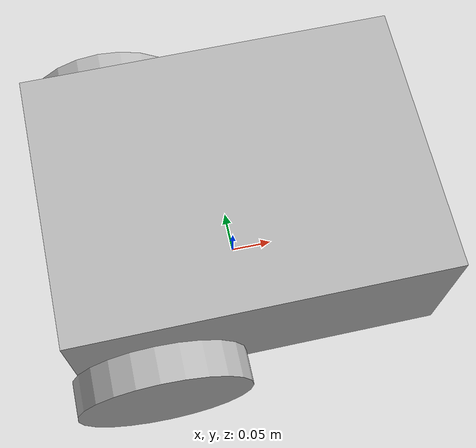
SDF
<sdf version='1.7'>
  <model name='mobile_bot'>
    <link name='base_footprint'>
      <inertial>
        <pose>0.004487 0 0.147179 0 -0 0</pose>
        <mass>15.6</mass>
        <inertia>
          <ixx>0.265823</ixx>
          <ixy>0</ixy>
          <ixz>0.00610256</ixz>
          <iyy>0.354933</iyy>
          <iyz>0</iyz>
          <izz>0.170998</izz>
        </inertia>
      </inertial>
      <collision name='base_footprint_fixed_joint_lump__base_link_collision'>
        <pose>0 0 0.15 0 -0 0</pose>
        <geometry>
          <box>
            <size>0.42 0.31 0.18</size>
          </box>
        </geometry>
      </collision>
      <collision name='base_footprint_fixed_joint_lump__front_caster_collision_1'>
        <pose>0.14 0 0.06 0 -0 0</pose>
        <geometry>
          <sphere>
            <radius>0.06</radius>
          </sphere>
        </geometry>
      </collision>
      <collision name='base_footprint_fixed_joint_lump__imu_link_collision_2'>
        <pose>0 0 0.16 0 -0 0</pose>
        <geometry>
          <box>
            <size>0.1 0.1 0.1</size>
          </box>
        </geometry>
        <surface>
          <contact>
            <ode/>
          </contact>
          <friction>
            <ode/>
          </friction>
        </surface>
      </collision>
      <visual name='base_footprint_fixed_joint_lump__base_link_visual'>
        <pose>0 0 0.15 0 -0 0</pose>
        <geometry>
          <box>
            <size>0.42 0.31 0.18</size>
          </box>
        </geometry>
      </visual>
      <visual name='base_footprint_fixed_joint_lump__front_caster_visual_1'>
        <pose>0.14 0 0.06 0 -0 0</pose>
        <geometry>
          <sphere>
            <radius>0.06</radius>
          </sphere>
        </geometry>
      </visual>
      <visual name='base_footprint_fixed_joint_lump__imu_link_visual_2'>
        <pose>0 0 0.16 0 -0 0</pose>
        <geometry>
          <box>
            <size>0.1 0.1 0.1</size>
          </box>
        </geometry>
      </visual>
      <sensor name='imu_sensor' type='imu'>
        <plugin name='imu_plugin' filename='libgazebo_ros_imu_sensor.so'>
          <ros>
            <namespace>/demo</namespace>
            <remapping>~/out:=imu</remapping>
          </ros>
          <initial_orientation_as_reference>0</initial_orientation_as_reference>
        </plugin>
        <always_on>1</always_on>
        <update_rate>100</update_rate>
        <visualize>1</visualize>
        <imu>
          <angular_velocity>
            <x>
              <noise type='gaussian'>
                <mean>0</mean>
                <stddev>0.0002</stddev>
                <bias_mean>7.5e-06</bias_mean>
                <bias_stddev>8e-07</bias_stddev>
              </noise>
            </x>
            <y>
              <noise type='gaussian'>
                <mean>0</mean>
                <stddev>0.0002</stddev>
                <bias_mean>7.5e-06</bias_mean>
                <bias_stddev>8e-07</bias_stddev>
              </noise>
            </y>
            <z>
              <noise type='gaussian'>
                <mean>0</mean>
                <stddev>0.0002</stddev>
                <bias_mean>7.5e-06</bias_mean>
                <bias_stddev>8e-07</bias_stddev>
              </noise>
            </z>
          </angular_velocity>
          <linear_acceleration>
            <x>
              <noise type='gaussian'>
                <mean>0</mean>
                <stddev>0.017</stddev>
                <bias_mean>0.1</bias_mean>
                <bias_stddev>0.001</bias_stddev>
              </noise>
            </x>
            <y>
              <noise type='gaussian'>
                <mean>0</mean>
                <stddev>0.017</stddev>
                <bias_mean>0.1</bias_mean>
                <bias_stddev>0.001</bias_stddev>
              </noise>
            </y>
            <z>
              <noise type='gaussian'>
                <mean>0</mean>
                <stddev>0.017</stddev>
                <bias_mean>0.1</bias_mean>
                <bias_stddev>0.001</bias_stddev>
              </noise>
            </z>
          </linear_acceleration>
        </imu>
        <pose>0 0 0.16 0 -0 0</pose>
      </sensor>
    </link>
    <joint name='drivewhl_l_joint' type='revolute'>
      <pose relative_to='base_footprint'>-0.12 0.18 0.1 1.5708 -0 0</pose>
      <parent>base_footprint</parent>
      <child>drivewhl_l_link</child>
      <axis>
        <xyz>0 1 0</xyz>
        <limit>
          <lower>-1e+16</lower>
          <upper>1e+16</upper>
        </limit>
        <dynamics>
          <spring_reference>0</spring_reference>
          <spring_stiffness>0</spring_stiffness>
        </dynamics>
      </axis>
    </joint>
    <link name='drivewhl_l_link'>
      <pose relative_to='drivewhl_l_joint'>0 0 0 0 -0 0</pose>
      <inertial>
        <pose>0 0 0 0 -0 0</pose>
        <mass>0.5</mass>
        <inertia>
          <ixx>0.00131667</ixx>
          <ixy>0</ixy>
          <ixz>0</ixz>
          <iyy>0.00131667</iyy>
          <iyz>0</iyz>
          <izz>0.0025</izz>
        </inertia>
      </inertial>
      <collision name='drivewhl_l_link_collision'>
        <pose>0 0 0 0 -0 0</pose>
        <geometry>
          <cylinder>
            <length>0.04</length>
            <radius>0.1</radius>
          </cylinder>
        </geometry>
      </collision>
      <visual name='drivewhl_l_link_visual'>
        <pose>0 0 0 0 -0 0</pose>
        <geometry>
          <cylinder>
            <length>0.04</length>
            <radius>0.1</radius>
          </cylinder>
        </geometry>
      </visual>
    </link>
    <joint name='drivewhl_r_joint' type='revolute'>
      <pose relative_to='base_footprint'>-0.12 -0.18 0.1 1.5708 -0 0</pose>
      <parent>base_footprint</parent>
      <child>drivewhl_r_link</child>
      <axis>
        <xyz>0 1 0</xyz>
        <limit>
          <lower>-1e+16</lower>
          <upper>1e+16</upper>
        </limit>
        <dynamics>
          <spring_reference>0</spring_reference>
          <spring_stiffness>0</spring_stiffness>
        </dynamics>
      </axis>
    </joint>
    <link name='drivewhl_r_link'>
      <pose relative_to='drivewhl_r_joint'>0 0 0 0 -0 0</pose>
      <inertial>
        <pose>0 0 0 0 -0 0</pose>
        <mass>0.5</mass>
        <inertia>
          <ixx>0.00131667</ixx>
          <ixy>0</ixy>
          <ixz>0</ixz>
          <iyy>0.00131667</iyy>
          <iyz>0</iyz>
          <izz>0.0025</izz>
        </inertia>
      </inertial>
      <collision name='drivewhl_r_link_collision'>
        <pose>0 0 0 0 -0 0</pose>
        <geometry>
          <cylinder>
            <length>0.04</length>
            <radius>0.1</radius>
          </cylinder>
        </geometry>
      </collision>
      <visual name='drivewhl_r_link_visual'>
        <pose>0 0 0 0 -0 0</pose>
        <geometry>
          <cylinder>
            <length>0.04</length>
            <radius>0.1</radius>
          </cylinder>
        </geometry>
      </visual>
    </link>
    <static>0</static>
    <plugin name='diff_drive' filename='libgazebo_ros_diff_drive.so'>
      <ros>
        <namespace>/demo</namespace>
      </ros>
      <left_joint>drivewhl_l_joint</left_joint>
      <right_joint>drivewhl_r_joint</right_joint>
      <wheel_separation>0.4</wheel_separation>
      <wheel_diameter>0.2</wheel_diameter>
      <max_wheel_torque>20</max_wheel_torque>
      <max_wheel_acceleration>1.0</max_wheel_acceleration>
      <command_topic>cmd_vel</command_topic>
      <publish_odom>1</publish_odom>
      <publish_odom_tf>0</publish_odom_tf>
      <publish_wheel_tf>1</publish_wheel_tf>
      <odometry_frame>odom</odometry_frame>
      <robot_base_frame>base_footprint</robot_base_frame>
    </plugin>
  </model>
</sdf>
